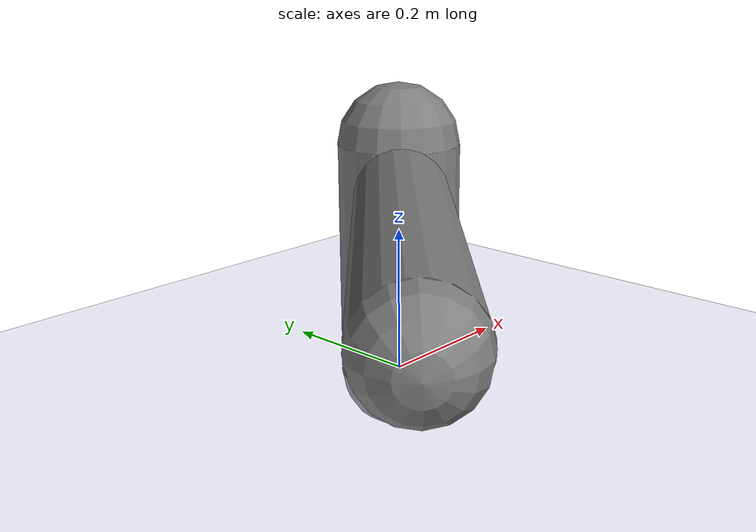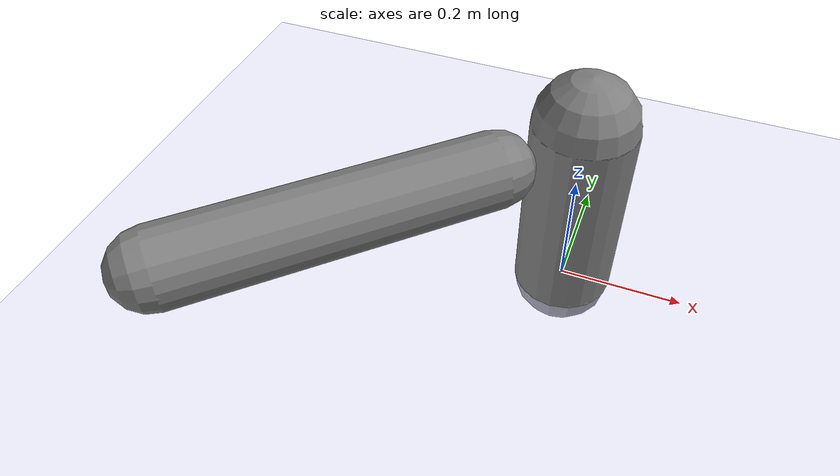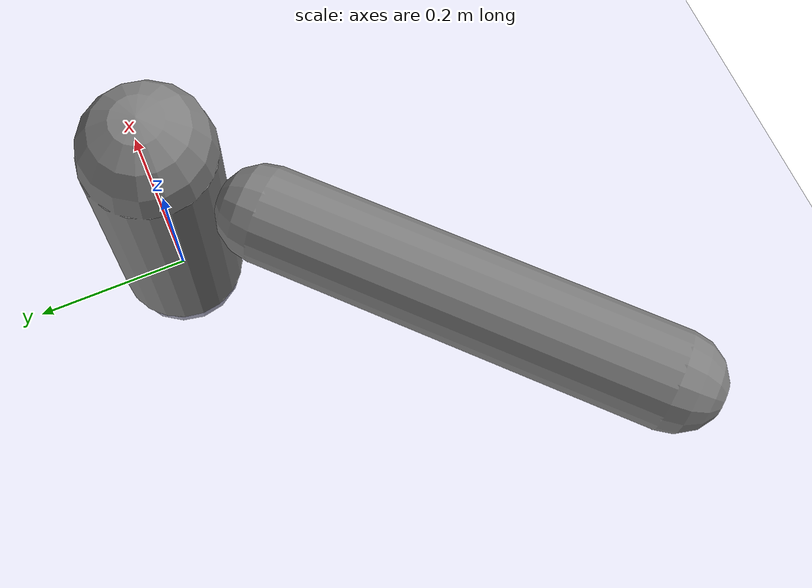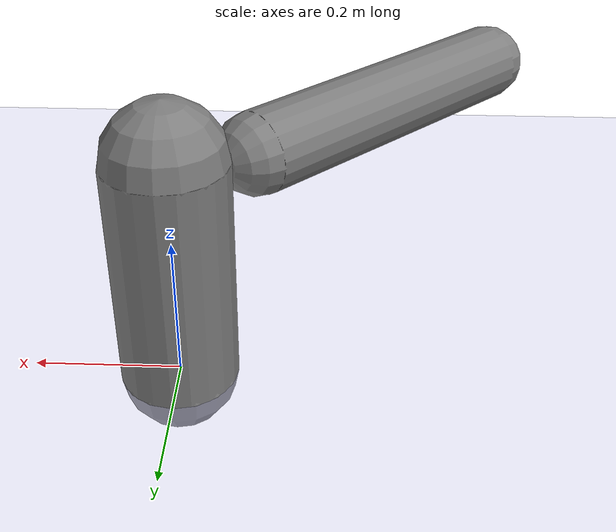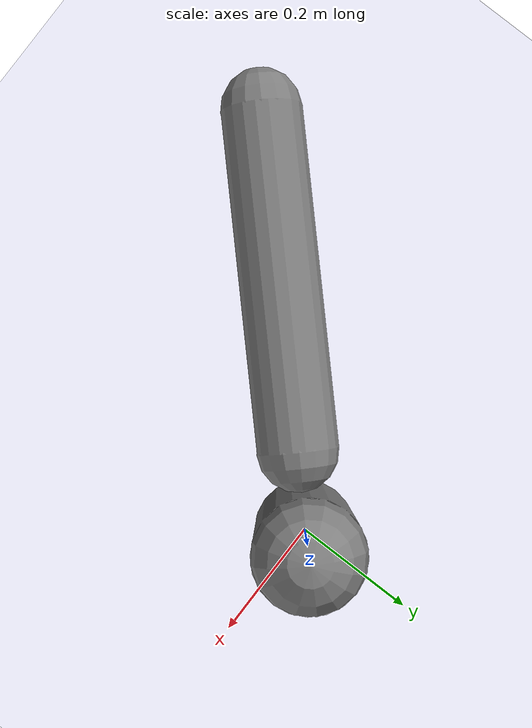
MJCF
<?xml version='1.0' encoding='UTF-8'?>
<mujoco model="robot_model">
  <worldbody>
    <light name="light" pos="0 -3 10" dir="0 0.5 -1" diffuse=".8 .8 .8" specular="0.1 0.1 0.1"/>
    <geom name="floor" type="plane" size="10.0 10.0 0.1" pos="0 0 0" rgba="0.8 0.8 1 1" contype="2" conaffinity="1"/>
    <body name="limb0" pos="0 0 0">
      <geom name="limb0_geom" type="capsule" fromto="0 0 0 0 0 0.31801945442486057" size="0.08028785270163702" density="400.0" contype="1" conaffinity="2"/>
      <site type="sphere" size="0.01" name="limb0_site0" pos="-0.10212719794440048 -0.09764624995487604 0.2810398348416017" quat="0.7071067811865476 0.48866201574206874 -0.5110865233704546 0.0"/>
      <freejoint name="limb0_root"/>
      <body name="limb1" pos="-0.10212719794440048 -0.09764624995487604 0.2810398348416017" quat="0.7071067811865476 0.48866201574206874 -0.5110865233704546 0.0">
        <geom name="limb1_geom" type="capsule" fromto="0 0 0 0 0 0.47385153610623176" size="0.05700883760009965" density="994.9291144398621" contype="1" conaffinity="2"/>
        <joint name="joint_limb0_limb1_0" type="hinge" axis="1 0 0" range="-120.0 120.0" damping="5.0"/>
      </body>
    </body>
  </worldbody>
  <actuator>
    <position name="position_actuator_joint_limb0_limb1_0" joint="joint_limb0_limb1_0" gear="1.8601423927186147" inheritrange="1" forcerange="-27.928726827998858 27.928726827998858" forcelimited="true" kp="100.0"/>
  </actuator>
  <contact>
    <pair geom1="limb0_geom" geom2="limb1_geom"/>
  </contact>
</mujoco>
